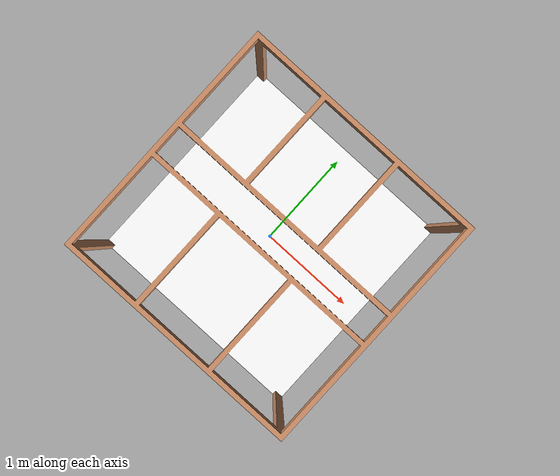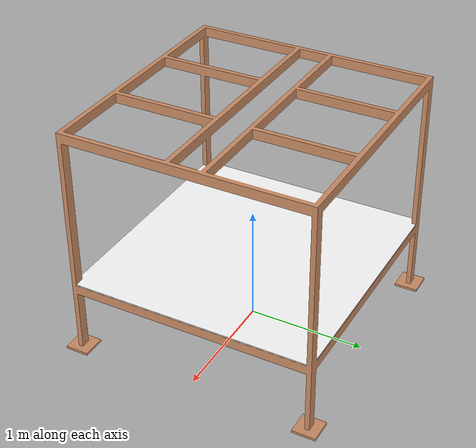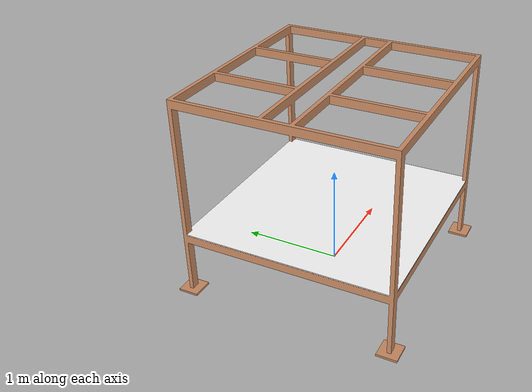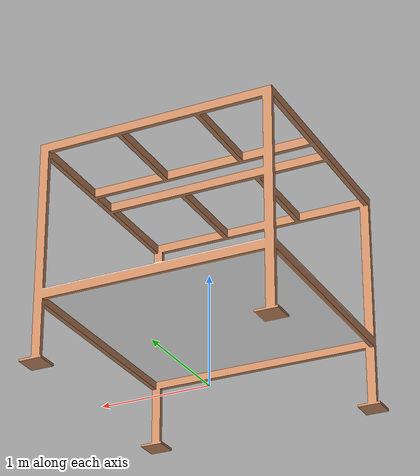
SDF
<?xml version="1.0" ?>
<sdf version="1.5">
  <model name="cell_idf">
    <static>true</static>
    <link name="body">
        <visual name="visual">
          <geometry>
            <mesh><uri>model://cell/meshes/AgilusStructure.dae</uri></mesh>
          </geometry>
        </visual>
        <collision name="collision">
          <geometry>
            <mesh><uri>model://cell/meshes/AgilusStructure.dae</uri></mesh>
          </geometry>
        </collision>
      </link>
  </model>
</sdf>
